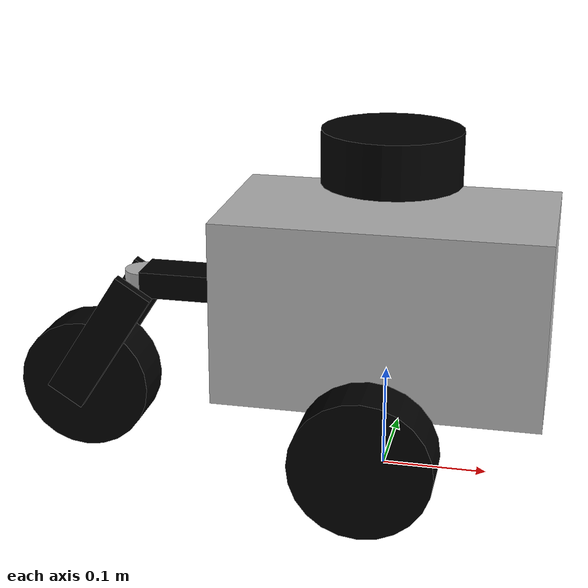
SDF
<?xml version="1.0" encoding="UTF-8"?>
<sdf version="1.4">
    <model name="gunnar">
        <plugin name="p3d" filename="libgazebo_ros_p3d.so">
          <alwaysOn>true</alwaysOn>
          <bodyName>chassis</bodyName>
          <topicName>ground_truth_p3d</topicName>
          <serviceName>p3d_service</serviceName>
          <gaussianNoise>0.0</gaussianNoise>
          <updateRate>20.0</updateRate>
        </plugin>

          <plugin name="differential_drive_controller" filename="libgazebo_ros_diff_drive.so">
            <alwaysOn>true</alwaysOn>
            <updateRate>20</updateRate>
            <rosDebugLevel>info</rosDebugLevel>
            <publishWheelTF>true</publishWheelTF>
            <publishTf>true</publishTf>
            <publishWheelJointState>true</publishWheelJointState>
            <legacyMode>false</legacyMode>
            <commandTopic>cmd_vel</commandTopic>

            <leftJoint>left_wheel_hinge</leftJoint>
            <rightJoint>right_wheel_hinge</rightJoint>
            <wheelSeparation>0.2242</wheelSeparation>
            <wheelDiameter>.06531</wheelDiameter>
            <wheelTorque>.6</wheelTorque>
            <wheelAcceleration>1</wheelAcceleration>

            <odometryTopic>odom</odometryTopic>
            <odometryFrame>odom</odometryFrame>
            <odometrySource>world</odometrySource>

            <robotBaseFrame>base_footprint</robotBaseFrame>
          </plugin>

        <static>false</static>

        <!-- ============= BODY ======= -->
        <link name="chassis">

            <pose>0 0 .17416 0 0 0</pose>
            <inertial>
                <mass>1</mass>
                <inertia>
                    <ixx>.005</ixx>
                    <iyy>.005</iyy>
                    <izz>.005</izz>
                    <ixy>0</ixy>
                    <ixz>0</ixz>
                    <iyz>0</iyz>
                </inertia>
            </inertial>
            <collision name="collision">
                <geometry>
                    <box>
                        <size>.3048 .1742 .1742</size>
                    </box>
                </geometry>
            </collision>
            <visual name="visual">
                <geometry>
                    <box>
                        <size>.3048 .1742 .1742</size>
                    </box>
                </geometry>
            </visual>

        <collision name="caster bracket_collision">
            <pose>-.1959 0 0 0 0 0</pose>
            <geometry>
                <box>
                    <size>.08708 .04354 .0254</size>
                </box>
            </geometry>
        </collision>
        <visual name="caster_bracket_visual">
            <pose>-.1959 0 0 0 0 0</pose>
            <geometry>
                <box>
                    <size>.08708 .04354 .0254</size>
                </box>
            </geometry>
            <material>
              <ambient>.5 .5 .5 1</ambient>
              <diffuse>0 0 0 1</diffuse>
              <specular>0.1 0.1 0.1 1</specular>
              <emissive>0 0 0 0</emissive>
            </material>
        </visual>
      </link>  <!-- chassis -->

      <!-- ============= CASTER ARM =============== -->
      <link name="caster_arm">
        <pose>0 0 .17416 0 0 0</pose>
        <inertial>
            <mass>.1</mass>
            <inertia>
                <ixx>.005</ixx>
                <iyy>.005</iyy>
                <izz>.005</izz>
                <ixy>0</ixy>
                <ixz>0</ixz>
                <iyz>0</iyz>
            </inertia>
        </inertial>
        <collision name="caster_yawjoint_collision">
          <pose>-0.23947 0 0 0 0 0</pose>
            <geometry>
                <cylinder>
                    <radius>0.02</radius>
                    <length>.02</length>
                </cylinder>
            </geometry>
        </collision>
        <visual name="caster_yawjoint_visual">
          <pose>-0.23947 0 0 0 0 0</pose>
            <geometry>
                <cylinder>
                    <radius>0.02</radius>
                    <length>.02</length>
                </cylinder>
            </geometry>
        </visual>

        <collision name="caster_arm_l_collision">
            <pose>-.28 -0.03 -.06 0 -1 0</pose>
            <geometry>
                <box>
                    <size>.14 .01 .04</size>
                </box>
            </geometry>
        </collision>
        <visual name="caster_arm_l_visual">
            <pose>-.28 -0.03 -.06 0 -1 0</pose>
            <geometry>
                <box>
                    <size>.14 .01 .04</size>
                </box>
            </geometry>
            <material>
              <ambient>.5 .5 .5 1</ambient>
              <diffuse>0 0 0 1</diffuse>
              <specular>0.1 0.1 0.1 1</specular>
              <emissive>0 0 0 0</emissive>
            </material>
        </visual>
        <collision name="caster_arm_r_collision">
            <pose>-.28 0.03 -.06 0 -1 0</pose>
            <geometry>
                <box>
                    <size>.14 .01 .04</size>
                </box>
            </geometry>
        </collision>
        <visual name="caster_arm_visual">
            <pose>-.28 0.03 -.06 0 -1 0</pose>
            <geometry>
                <box>
                    <size>.14 .01 .04</size>
                </box>
            </geometry>
            <material>
              <ambient>.5 .5 .5 1</ambient>
              <diffuse>0 0 0 1</diffuse>
              <specular>0.1 0.1 0.1 1</specular>
              <emissive>0 0 0 0</emissive>
            </material>
        </visual>
      </link> <!-- caster_arm -->

      <!-- =========== WHEELS ============= -->
        <link name="left_wheel">
            <pose>0.0 0.13 0.06531 0 1.5707 1.5707</pose>
            <inertial>
                <mass>.1</mass>
                <inertia>
                    <ixx>.005</ixx>
                    <iyy>.005</iyy>
                    <izz>.005</izz>
                    <ixy>0</ixy>
                    <ixz>0</ixz>
                    <iyz>0</iyz>
                </inertia>
            </inertial>
            <collision name="collision">
                <geometry>
                    <cylinder>
                        <radius>0.06531</radius>
                        <length>.05</length>
                    </cylinder>
                </geometry>
                <surface>
                    <friction>
                        <ode>
                            <mu>.9</mu>
                            <mu2>.9</mu2>
                            <slip1>.1</slip1>
                            <slip2>.1</slip2>
                        </ode>
                    </friction>
                </surface>

            </collision>
            <visual name="visual">
                <geometry>
                    <cylinder>
                        <radius>0.06531</radius>
                        <length>.05</length>
                    </cylinder>
                </geometry>
                  <material>
                    <ambient>0 0 0 1</ambient>
                  </material>
            </visual>
        </link> <!-- left_wheel -->

        <link name="right_wheel">
            <pose>0.0 -0.13 0.06531 0 1.5707 1.5707</pose>
            <inertial>
                <mass>.1</mass>
                <inertia>
                    <ixx>.005</ixx>
                    <iyy>.005</iyy>
                    <izz>.005</izz>
                    <ixy>0</ixy>
                    <ixz>0</ixz>
                    <iyz>0</iyz>
                </inertia>
            </inertial>
            <collision name="collision">
                <geometry>
                    <cylinder>
                        <radius>0.06531</radius>
                        <length>.05</length>
                    </cylinder>
                </geometry>
                <surface>
                    <friction>
                        <ode>
                            <mu>.9</mu>
                            <mu2>.9</mu2>
                            <slip1>.1</slip1>
                            <slip2>.1</slip2>
                        </ode>
                    </friction>
                </surface>
            </collision>
            <visual name="visual">
                <geometry>
                    <cylinder>
                        <radius>0.06531</radius>
                        <length>.05</length>
                    </cylinder>
                </geometry>
                <material>
                    <ambient>0 0 0 1</ambient>
                  </material>
            </visual>
        </link> <!-- right_wheel -->

        <link name="caster_wheel">
            <pose>-0.3 0 0.06531 0 1.5707 1.5707</pose>
            <inertial>
                <mass>.1</mass>
                <inertia>
                    <ixx>.005</ixx>
                    <iyy>.005</iyy>
                    <izz>.005</izz>
                    <ixy>0</ixy>
                    <ixz>0</ixz>
                    <iyz>0</iyz>
                </inertia>
            </inertial>
            <collision name="collision">
                <geometry>
                    <cylinder>
                        <radius>0.06531</radius>
                        <length>.05</length>
                    </cylinder>
                </geometry>
                <surface>
                    <friction>
                        <ode>
                            <mu>.9</mu>
                            <mu2>.9</mu2>
                            <slip1>.1</slip1>
                            <slip2>.1</slip2>
                        </ode>
                    </friction>
                </surface>
            </collision>
            <visual name="visual">
                <geometry>
                    <cylinder>
                        <radius>0.06531</radius>
                        <length>.05</length>
                    </cylinder>
                </geometry>
                  <material>
                    <ambient>0 0 0 1</ambient>
                  </material>
            </visual>
        </link> <!-- caster_wheel -->

        <!-- ====== LIDAR ====== -->
        <link name="lidar_disk">
            <pose>0 0 0.31 0 0 0</pose>
            <inertial>
                <mass>.1</mass>
                <inertia>
                    <ixx>.005</ixx>
                    <iyy>.005</iyy>
                    <izz>.005</izz>
                    <ixy>0</ixy>
                    <ixz>0</ixz>
                    <iyz>0</iyz>
                </inertia>
            </inertial>
            <collision name="collision">
                <geometry>
                    <cylinder>
                        <radius>0.06531</radius>
                        <length>.05</length>
                    </cylinder>
                </geometry>
            </collision>
            <visual name="visual">
                <geometry>
                    <cylinder>
                        <radius>0.06531</radius>
                        <length>.05</length>
                    </cylinder>
                </geometry>
                  <material>
                    <ambient>0 0 0 1</ambient>
                  </material>
            </visual>
        </link> <!-- caster_wheel -->

        <!-- ============= JOINTS ============== -->
        <joint type="revolute" name="left_wheel_hinge">
            <pose>0 0 -0.03 0 0 0</pose>
            <parent>chassis</parent>
            <child>left_wheel</child>
            <axis>
                <xyz>0 1 0</xyz>
                <dynamics>
                  <friction>.005</friction>
                  <damping>0.1</damping>
                </dynamics>
            </axis>
        </joint>

        <joint type="revolute" name="right_wheel_hinge">
            <pose>0 0 0.03 0 0 0</pose>
            <parent>chassis</parent>
            <child>right_wheel</child>
            <axis>
                <xyz>0 1 0</xyz>
                <dynamics>
                  <friction>.005</friction>
                  <damping>0.01</damping>
                </dynamics>
            </axis>
        </joint>

        <joint type="revolute" name="caster_yaw">
            <pose>-0.23947 0 0 0 0 0</pose>
            <parent>chassis</parent>
            <child>caster_arm</child>
            <axis>
                <xyz>0 0 1</xyz>
                <dynamics>
                  <friction>.0005</friction>
                  <damping>0.001</damping>
                </dynamics>
            </axis>
        </joint>

        <joint type="revolute" name="caster_wheel_hinge">
            <pose>0 0 0.03 0 0 0</pose>
            <parent>caster_arm</parent>
            <child>caster_wheel</child>
            <axis>
                <xyz>0 1 0</xyz>
                <dynamics>
                  <friction>.01</friction>
                  <damping>0.01</damping>
                </dynamics>
            </axis>
        </joint>

          <joint type="revolute" name="lidar_hinge">
            <pose>0 0 0 0 0</pose>
            <parent>chassis</parent>
            <child>lidar_disk</child>
            <axis>
                <xyz>0 0 1</xyz>
                <dynamics>
                  <friction>.001</friction>
                  <damping>0.001</damping>
                </dynamics>
            </axis>
        </joint>

    </model>
</sdf>
